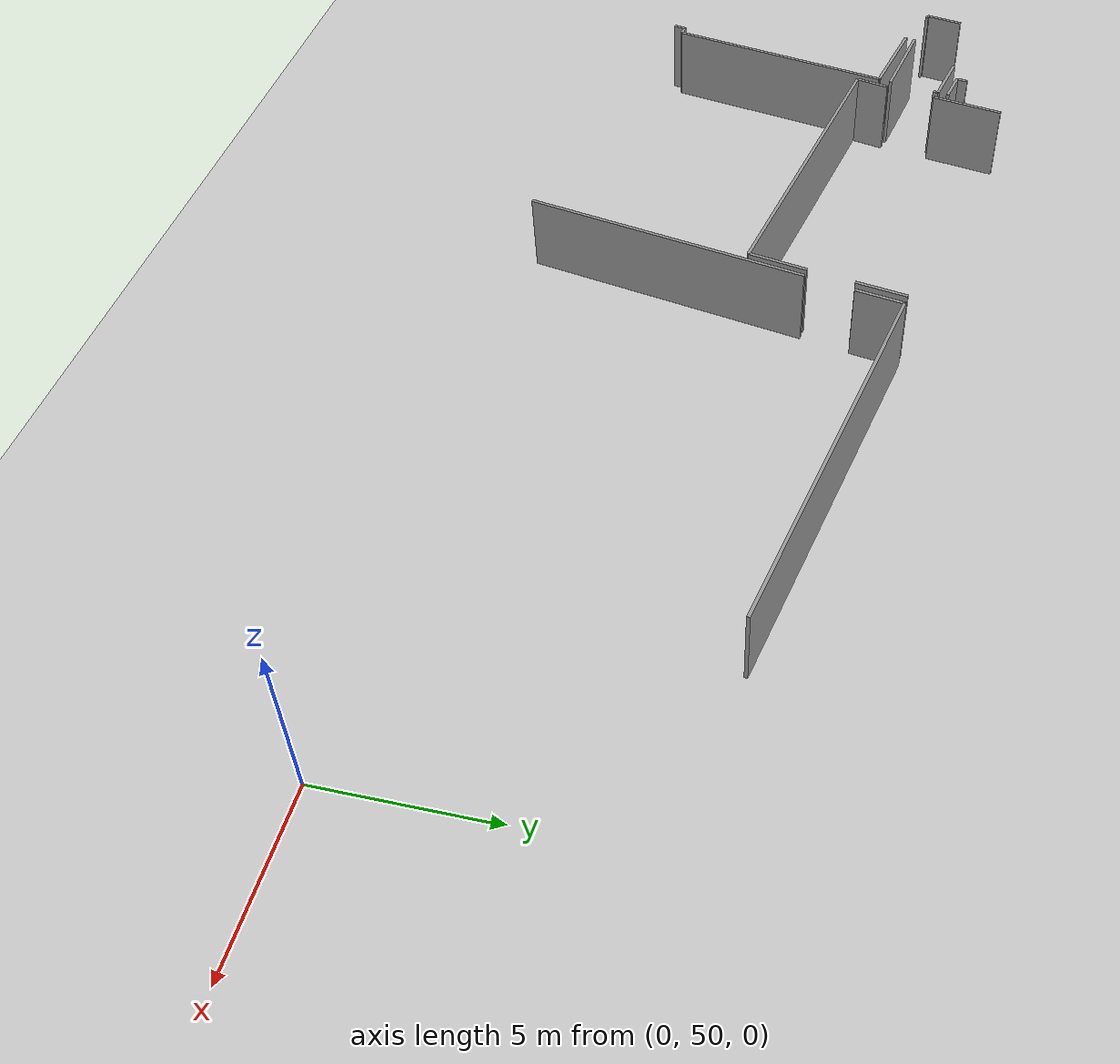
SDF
<sdf version="1.6">
 <world name="default">
  <model name="ground_plane">
   <static>1</static>
   <link name="link">
    <collision name="collision">
     <geometry><plane><normal>0 0 1</normal><size>100 100</size></plane></geometry>
     <surface><friction><ode><mu>100</mu><mu2>50</mu2></ode></friction></surface>
    </collision>
    <visual name="visual">
     <cast_shadows>0</cast_shadows>
     <geometry><plane><normal>0 0 1</normal><size>100 100</size></plane></geometry>
     <material>
      <script><uri>file://media/materials/scripts/gazebo.material</uri><name>Gazebo/Grey</name></script>
     </material>
    </visual>
   </link>
  </model>
  <model name="0510045926_A-40">
   <static>1</static>
   <link name="Wall_961">
    <collision name="Wall_961_Collision">
     <geometry><box><size>1.03359788667 0.1 2.5</size></box></geometry>
     <pose>0.516798943337 0 1.25 0 0 0</pose>
    </collision>
    <visual name="Wall_961_Visual">
     <pose>0.516798943337 0 1.25 0 0 0</pose>
     <geometry><box><size>1.03359788667 0.1 2.5</size></box></geometry>
     <material>
      <script><uri>file://media/materials/scripts/gazebo.material</uri><name>Gazebo/Grey</name></script>
      <ambient>1 1 1 1</ambient>
     </material>
    </visual>
    <pose>105.928710584 -39.0725395506 0 0 0 2.92753197003</pose>
   </link>
   <link name="Wall_962">
    <collision name="Wall_962_Collision">
     <geometry><box><size>0.356006374939 0.1 2.5</size></box></geometry>
     <pose>0.178003187469 0 1.25 0 0 0</pose>
    </collision>
    <visual name="Wall_962_Visual">
     <pose>0.178003187469 0 1.25 0 0 0</pose>
     <geometry><box><size>0.356006374939 0.1 2.5</size></box></geometry>
     <material>
      <script><uri>file://media/materials/scripts/gazebo.material</uri><name>Gazebo/Grey</name></script>
      <ambient>1 1 1 1</ambient>
     </material>
    </visual>
    <pose>104.91870316 -38.8529727191 0 0 0 1.39955230815</pose>
   </link>
   <link name="Wall_965">
    <collision name="Wall_965_Collision">
     <geometry><box><size>0.311475188821 0.1 2.5</size></box></geometry>
     <pose>0.155737594411 0 1.25 0 0 0</pose>
    </collision>
    <visual name="Wall_965_Visual">
     <pose>0.155737594411 0 1.25 0 0 0</pose>
     <geometry><box><size>0.311475188821 0.1 2.5</size></box></geometry>
     <material>
      <script><uri>file://media/materials/scripts/gazebo.material</uri><name>Gazebo/Grey</name></script>
      <ambient>1 1 1 1</ambient>
     </material>
    </visual>
    <pose>104.058965751 -48.6662139952 0 0 0 2.97952542409</pose>
   </link>
   <link name="Wall_966">
    <collision name="Wall_966_Collision">
     <geometry><box><size>0.415970370447 0.1 2.5</size></box></geometry>
     <pose>0.207985185224 0 1.25 0 0 0</pose>
    </collision>
    <visual name="Wall_966_Visual">
     <pose>0.207985185224 0 1.25 0 0 0</pose>
     <geometry><box><size>0.415970370447 0.1 2.5</size></box></geometry>
     <material>
      <script><uri>file://media/materials/scripts/gazebo.material</uri><name>Gazebo/Grey</name></script>
      <ambient>1 1 1 1</ambient>
     </material>
    </visual>
    <pose>103.751572187 -48.6159547667 0 0 0 -1.76795253768</pose>
   </link>
   <link name="Wall_969">
    <collision name="Wall_969_Collision">
     <geometry><box><size>2.84391866196 0.1 2.5</size></box></geometry>
     <pose>1.42195933098 0 1.25 0 0 0</pose>
    </collision>
    <visual name="Wall_969_Visual">
     <pose>1.42195933098 0 1.25 0 0 0</pose>
     <geometry><box><size>2.84391866196 0.1 2.5</size></box></geometry>
     <material>
      <script><uri>file://media/materials/scripts/gazebo.material</uri><name>Gazebo/Grey</name></script>
      <ambient>1 1 1 1</ambient>
     </material>
    </visual>
    <pose>102.697651396 -40.8648648649 0 0 0 -0.206848066886</pose>
   </link>
   <link name="Wall_970">
    <collision name="Wall_970_Collision">
     <geometry><box><size>7.35602487016 0.1 2.5</size></box></geometry>
     <pose>3.67801243508 0 1.25 0 0 0</pose>
    </collision>
    <visual name="Wall_970_Visual">
     <pose>3.67801243508 0 1.25 0 0 0</pose>
     <geometry><box><size>7.35602487016 0.1 2.5</size></box></geometry>
     <material>
      <script><uri>file://media/materials/scripts/gazebo.material</uri><name>Gazebo/Grey</name></script>
      <ambient>1 1 1 1</ambient>
     </material>
    </visual>
    <pose>105.480946549 -41.44893802 0 0 0 -1.76532927967</pose>
   </link>
   <link name="Wall_971">
    <collision name="Wall_971_Collision">
     <geometry><box><size>1.2090620517 0.1 2.5</size></box></geometry>
     <pose>0.604531025852 0 1.25 0 0 0</pose>
    </collision>
    <visual name="Wall_971_Visual">
     <pose>0.604531025852 0 1.25 0 0 0</pose>
     <geometry><box><size>1.2090620517 0.1 2.5</size></box></geometry>
     <material>
      <script><uri>file://media/materials/scripts/gazebo.material</uri><name>Gazebo/Grey</name></script>
      <ambient>1 1 1 1</ambient>
     </material>
    </visual>
    <pose>101.077933533 -40.2594696128 0 0 0 1.36636007956</pose>
   </link>
   <link name="Wall_976">
    <collision name="Wall_976_Collision">
     <geometry><box><size>1.7549125348 0.1 2.5</size></box></geometry>
     <pose>0.8774562674 0 1.25 0 0 0</pose>
    </collision>
    <visual name="Wall_976_Visual">
     <pose>0.8774562674 0 1.25 0 0 0</pose>
     <geometry><box><size>1.7549125348 0.1 2.5</size></box></geometry>
     <material>
      <script><uri>file://media/materials/scripts/gazebo.material</uri><name>Gazebo/Grey</name></script>
      <ambient>1 1 1 1</ambient>
     </material>
    </visual>
    <pose>104.149584663 -39.0433485846 0 0 0 -0.207012011869</pose>
   </link>
   <link name="Wall_977">
    <collision name="Wall_977_Collision">
     <geometry><box><size>0.16987577926 0.1 2.5</size></box></geometry>
     <pose>0.08493788963 0 1.25 0 0 0</pose>
    </collision>
    <visual name="Wall_977_Visual">
     <pose>0.08493788963 0 1.25 0 0 0</pose>
     <geometry><box><size>0.16987577926 0.1 2.5</size></box></geometry>
     <material>
      <script><uri>file://media/materials/scripts/gazebo.material</uri><name>Gazebo/Grey</name></script>
      <ambient>1 1 1 1</ambient>
     </material>
    </visual>
    <pose>105.867028804 -39.4040473909 0 0 0 -1.78460307436</pose>
   </link>
   <link name="Wall_978">
    <collision name="Wall_978_Collision">
     <geometry><box><size>2.86332682495 0.1 2.5</size></box></geometry>
     <pose>1.43166341247 0 1.25 0 0 0</pose>
    </collision>
    <visual name="Wall_978_Visual">
     <pose>1.43166341247 0 1.25 0 0 0</pose>
     <geometry><box><size>2.86332682495 0.1 2.5</size></box></geometry>
     <material>
      <script><uri>file://media/materials/scripts/gazebo.material</uri><name>Gazebo/Grey</name></script>
      <ambient>1 1 1 1</ambient>
     </material>
    </visual>
    <pose>105.57943433 -41.0537177234 0 0 0 2.96659179102</pose>
   </link>
   <link name="Wall_979">
    <collision name="Wall_979_Collision">
     <geometry><box><size>0.155247961385 0.1 2.5</size></box></geometry>
     <pose>0.0776239806927 0 1.25 0 0 0</pose>
    </collision>
    <visual name="Wall_979_Visual">
     <pose>0.0776239806927 0 1.25 0 0 0</pose>
     <geometry><box><size>0.155247961385 0.1 2.5</size></box></geometry>
     <material>
      <script><uri>file://media/materials/scripts/gazebo.material</uri><name>Gazebo/Grey</name></script>
      <ambient>1 1 1 1</ambient>
     </material>
    </visual>
    <pose>101.230741895 -40.2868837375 0 0 0 2.96407901498</pose>
   </link>
   <link name="Wall_980">
    <collision name="Wall_980_Collision">
     <geometry><box><size>1.08555914612 0.1 2.5</size></box></geometry>
     <pose>0.542779573062 0 1.25 0 0 0</pose>
    </collision>
    <visual name="Wall_980_Visual">
     <pose>0.542779573062 0 1.25 0 0 0</pose>
     <geometry><box><size>1.08555914612 0.1 2.5</size></box></geometry>
     <material>
      <script><uri>file://media/materials/scripts/gazebo.material</uri><name>Gazebo/Grey</name></script>
      <ambient>1 1 1 1</ambient>
     </material>
    </visual>
    <pose>105.643146786 -42.172620143 0 0 0 1.33670652549</pose>
   </link>
   <link name="Wall_981">
    <collision name="Wall_981_Collision">
     <geometry><box><size>2.30599048038 0.1 2.5</size></box></geometry>
     <pose>1.15299524019 0 1.25 0 0 0</pose>
    </collision>
    <visual name="Wall_981_Visual">
     <pose>1.15299524019 0 1.25 0 0 0</pose>
     <geometry><box><size>2.30599048038 0.1 2.5</size></box></geometry>
     <material>
      <script><uri>file://media/materials/scripts/gazebo.material</uri><name>Gazebo/Grey</name></script>
      <ambient>1 1 1 1</ambient>
     </material>
    </visual>
    <pose>106.17340703 -39.5180190757 0 0 0 1.38188483617</pose>
   </link>
   <link name="Wall_983">
    <collision name="Wall_983_Collision">
     <geometry><box><size>1.5997901994 0.1 2.5</size></box></geometry>
     <pose>0.799895099701 0 1.25 0 0 0</pose>
    </collision>
    <visual name="Wall_983_Visual">
     <pose>0.799895099701 0 1.25 0 0 0</pose>
     <geometry><box><size>1.5997901994 0.1 2.5</size></box></geometry>
     <material>
      <script><uri>file://media/materials/scripts/gazebo.material</uri><name>Gazebo/Grey</name></script>
      <ambient>1 1 1 1</ambient>
     </material>
    </visual>
    <pose>116.481117887 -39.1804192077 0 0 0 -1.75138779194</pose>
   </link>
   <link name="Wall_984">
    <collision name="Wall_984_Collision">
     <geometry><box><size>1.85819163187 0.1 2.5</size></box></geometry>
     <pose>0.929095815935 0 1.25 0 0 0</pose>
    </collision>
    <visual name="Wall_984_Visual">
     <pose>0.929095815935 0 1.25 0 0 0</pose>
     <geometry><box><size>1.85819163187 0.1 2.5</size></box></geometry>
     <material>
      <script><uri>file://media/materials/scripts/gazebo.material</uri><name>Gazebo/Grey</name></script>
      <ambient>1 1 1 1</ambient>
     </material>
    </visual>
    <pose>115.929027877 -42.2345557579 0 0 0 -1.76420015925</pose>
   </link>
   <link name="Wall_985">
    <collision name="Wall_985_Collision">
     <geometry><box><size>10.1061784292 0.1 2.5</size></box></geometry>
     <pose>5.05308921459 0 1.25 0 0 0</pose>
    </collision>
    <visual name="Wall_985_Visual">
     <pose>5.05308921459 0 1.25 0 0 0</pose>
     <geometry><box><size>10.1061784292 0.1 2.5</size></box></geometry>
     <material>
      <script><uri>file://media/materials/scripts/gazebo.material</uri><name>Gazebo/Grey</name></script>
      <ambient>1 1 1 1</ambient>
     </material>
    </visual>
    <pose>115.571882754 -44.0581027141 0 0 0 2.95392570707</pose>
   </link>
   <link name="Wall_986">
    <collision name="Wall_986_Collision">
     <geometry><box><size>12.2065721745 0.1 2.5</size></box></geometry>
     <pose>6.10328608726 0 1.25 0 0 0</pose>
    </collision>
    <visual name="Wall_986_Visual">
     <pose>6.10328608726 0 1.25 0 0 0</pose>
     <geometry><box><size>12.2065721745 0.1 2.5</size></box></geometry>
     <material>
      <script><uri>file://media/materials/scripts/gazebo.material</uri><name>Gazebo/Grey</name></script>
      <ambient>1 1 1 1</ambient>
     </material>
    </visual>
    <pose>116.810341217 -39.2309322706 0 0 0 -0.189703968534</pose>
   </link>
   <link name="Wall_991">
    <collision name="Wall_991_Collision">
     <geometry><box><size>9.00665713936 0.1 2.5</size></box></geometry>
     <pose>4.50332856968 0 1.25 0 0 0</pose>
    </collision>
    <visual name="Wall_991_Visual">
     <pose>4.50332856968 0 1.25 0 0 0</pose>
     <geometry><box><size>9.00665713936 0.1 2.5</size></box></geometry>
     <material>
      <script><uri>file://media/materials/scripts/gazebo.material</uri><name>Gazebo/Grey</name></script>
      <ambient>1 1 1 1</ambient>
     </material>
    </visual>
    <pose>114.483440473 -51.1035327415 0 0 0 1.37741348004</pose>
   </link>
   <link name="Wall_992">
    <collision name="Wall_992_Collision">
     <geometry><box><size>1.51540528194 0.1 2.5</size></box></geometry>
     <pose>0.757702640968 0 1.25 0 0 0</pose>
    </collision>
    <visual name="Wall_992_Visual">
     <pose>0.757702640968 0 1.25 0 0 0</pose>
     <geometry><box><size>1.51540528194 0.1 2.5</size></box></geometry>
     <material>
      <script><uri>file://media/materials/scripts/gazebo.material</uri><name>Gazebo/Grey</name></script>
      <ambient>1 1 1 1</ambient>
     </material>
    </visual>
    <pose>116.535438467 -40.7211945451 0 0 0 1.38838091971</pose>
   </link>
   <pose>-133.95 101.113233661 0 0 0 0</pose>
  </model>
 </world>
</sdf>
